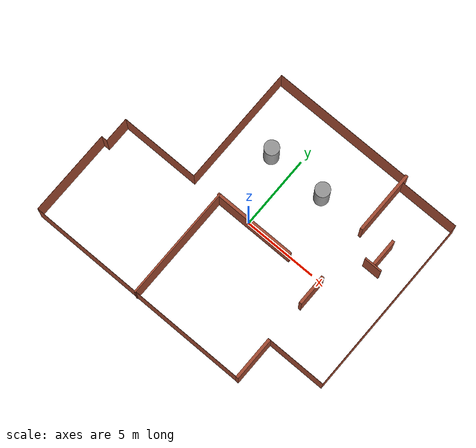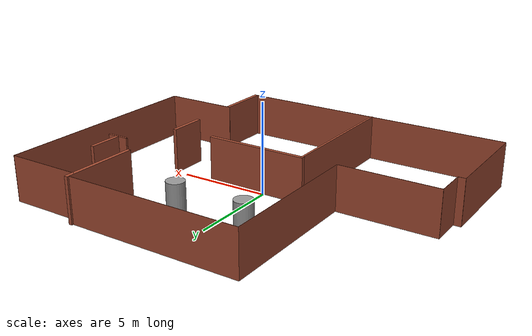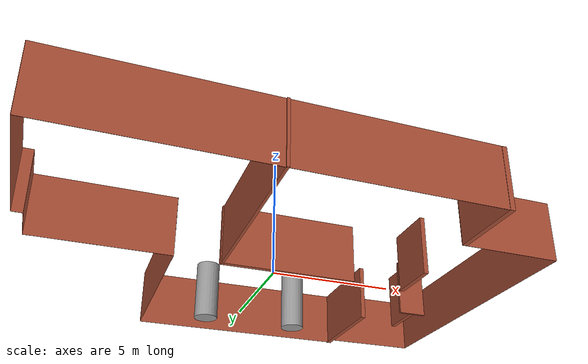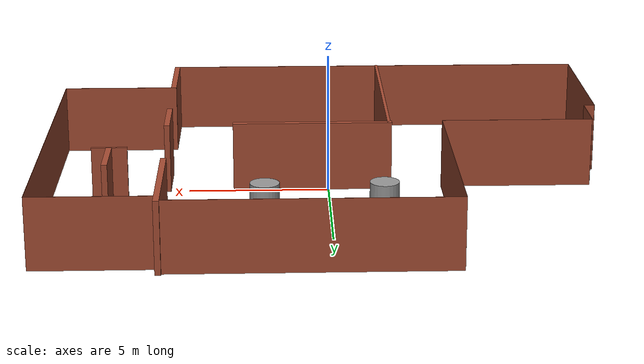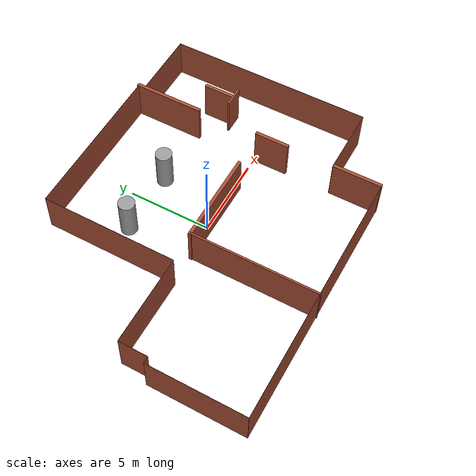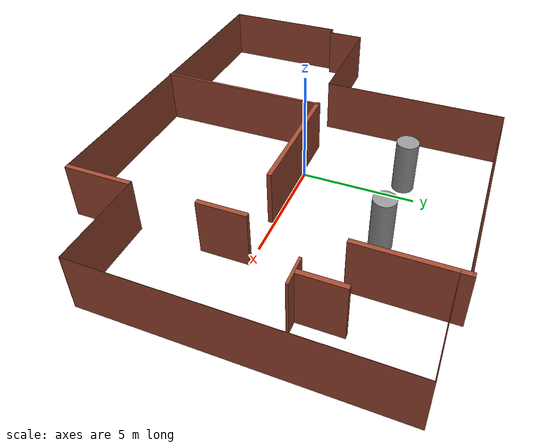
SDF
<?xml version='1.0'?>
<sdf version='1.6'>
  <model name='ANPL_Lab_Extended'>
    <link name='Wall_165'>
      <pose frame=''>-9.925 -4.975 0 0 -0 1.5708</pose>
      <self_collide>0</self_collide>
      <kinematic>0</kinematic>
      <visual name='Wall_165_Visual'>
        <pose frame=''>0 0 1.25 0 -0 0</pose>
        <geometry>
          <box>
            <size>5.86 0.01 2.5</size>
          </box>
        </geometry>
        <material>
          <script>
            <uri>file://media/materials/scripts/gazebo.material</uri>
            <name>Gazebo/Bricks</name>
          </script>
          <ambient>0.435294 0.796078 0.67451 1</ambient>
          <diffuse>1 1 1 1</diffuse>
          <specular>0.2 0.2 0.2 1</specular>
          <emissive>0 0 0 1</emissive>
        </material>
        <cast_shadows>1</cast_shadows>
        <transparency>0</transparency>
      </visual>
      <collision name='Wall_165_Collision'>
        <laser_retro>0</laser_retro>
        <max_contacts>10</max_contacts>
        <pose frame=''>0 0 1.25 0 -0 0</pose>
        <geometry>
          <box>
            <size>5.86 0.01 2.5</size>
          </box>
        </geometry>
        <surface>
          <friction>
            <ode>
              <mu>1</mu>
              <mu2>1</mu2>
              <fdir1>0 0 0</fdir1>
              <slip1>0</slip1>
              <slip2>0</slip2>
            </ode>
            <torsional>
              <coefficient>1</coefficient>
              <patch_radius>0</patch_radius>
              <surface_radius>0</surface_radius>
              <use_patch_radius>1</use_patch_radius>
              <ode>
                <slip>0</slip>
              </ode>
            </torsional>
          </friction>
          <bounce>
            <restitution_coefficient>0</restitution_coefficient>
            <threshold>1e+06</threshold>
          </bounce>
          <contact>
            <collide_without_contact>0</collide_without_contact>
            <collide_without_contact_bitmask>1</collide_without_contact_bitmask>
            <collide_bitmask>1</collide_bitmask>
            <ode>
              <soft_cfm>0</soft_cfm>
              <soft_erp>0.2</soft_erp>
              <kp>1e+13</kp>
              <kd>1</kd>
              <max_vel>0.01</max_vel>
              <min_depth>0</min_depth>
            </ode>
            <bullet>
              <split_impulse>1</split_impulse>
              <split_impulse_penetration_threshold>-0.01</split_impulse_penetration_threshold>
              <soft_cfm>0</soft_cfm>
              <soft_erp>0.2</soft_erp>
              <kp>1e+13</kp>
              <kd>1</kd>
            </bullet>
          </contact>
        </surface>
      </collision>
    </link>
    <link name='Wall_167'>
      <pose frame=''>-9.725 -2.05 0 0 -0 0</pose>
      <self_collide>0</self_collide>
      <kinematic>0</kinematic>
      <visual name='Wall_167_Visual'>
        <pose frame=''>0 0 1.25 0 -0 0</pose>
        <geometry>
          <box>
            <size>0.41 0.01 2.5</size>
          </box>
        </geometry>
        <material>
          <script>
            <uri>file://media/materials/scripts/gazebo.material</uri>
            <name>Gazebo/Bricks</name>
          </script>
          <ambient>0.435294 0.796078 0.67451 1</ambient>
          <diffuse>1 1 1 1</diffuse>
          <specular>0.2 0.2 0.2 1</specular>
          <emissive>0 0 0 1</emissive>
        </material>
        <cast_shadows>1</cast_shadows>
        <transparency>0</transparency>
      </visual>
      <collision name='Wall_167_Collision'>
        <laser_retro>0</laser_retro>
        <max_contacts>10</max_contacts>
        <pose frame=''>0 0 1.25 0 -0 0</pose>
        <geometry>
          <box>
            <size>0.41 0.01 2.5</size>
          </box>
        </geometry>
        <surface>
          <friction>
            <ode>
              <mu>1</mu>
              <mu2>1</mu2>
              <fdir1>0 0 0</fdir1>
              <slip1>0</slip1>
              <slip2>0</slip2>
            </ode>
            <torsional>
              <coefficient>1</coefficient>
              <patch_radius>0</patch_radius>
              <surface_radius>0</surface_radius>
              <use_patch_radius>1</use_patch_radius>
              <ode>
                <slip>0</slip>
              </ode>
            </torsional>
          </friction>
          <bounce>
            <restitution_coefficient>0</restitution_coefficient>
            <threshold>1e+06</threshold>
          </bounce>
          <contact>
            <collide_without_contact>0</collide_without_contact>
            <collide_without_contact_bitmask>1</collide_without_contact_bitmask>
            <collide_bitmask>1</collide_bitmask>
            <ode>
              <soft_cfm>0</soft_cfm>
              <soft_erp>0.2</soft_erp>
              <kp>1e+13</kp>
              <kd>1</kd>
              <max_vel>0.01</max_vel>
              <min_depth>0</min_depth>
            </ode>
            <bullet>
              <split_impulse>1</split_impulse>
              <split_impulse_penetration_threshold>-0.01</split_impulse_penetration_threshold>
              <soft_cfm>0</soft_cfm>
              <soft_erp>0.2</soft_erp>
              <kp>1e+13</kp>
              <kd>1</kd>
            </bullet>
          </contact>
        </surface>
      </collision>
    </link>
    <link name='Wall_169'>
      <pose frame=''>-9.525 -1.175 0 0 -0 1.5708</pose>
      <self_collide>0</self_collide>
      <kinematic>0</kinematic>
      <visual name='Wall_169_Visual'>
        <pose frame=''>0 0 1.25 0 -0 0</pose>
        <geometry>
          <box>
            <size>1.76 0.01 2.5</size>
          </box>
        </geometry>
        <material>
          <script>
            <uri>file://media/materials/scripts/gazebo.material</uri>
            <name>Gazebo/Bricks</name>
          </script>
          <ambient>0.435294 0.796078 0.67451 1</ambient>
          <diffuse>1 1 1 1</diffuse>
          <specular>0.2 0.2 0.2 1</specular>
          <emissive>0 0 0 1</emissive>
        </material>
        <cast_shadows>1</cast_shadows>
        <transparency>0</transparency>
      </visual>
      <collision name='Wall_169_Collision'>
        <laser_retro>0</laser_retro>
        <max_contacts>10</max_contacts>
        <pose frame=''>0 0 1.25 0 -0 0</pose>
        <geometry>
          <box>
            <size>1.76 0.01 2.5</size>
          </box>
        </geometry>
        <surface>
          <friction>
            <ode>
              <mu>1</mu>
              <mu2>1</mu2>
              <fdir1>0 0 0</fdir1>
              <slip1>0</slip1>
              <slip2>0</slip2>
            </ode>
            <torsional>
              <coefficient>1</coefficient>
              <patch_radius>0</patch_radius>
              <surface_radius>0</surface_radius>
              <use_patch_radius>1</use_patch_radius>
              <ode>
                <slip>0</slip>
              </ode>
            </torsional>
          </friction>
          <bounce>
            <restitution_coefficient>0</restitution_coefficient>
            <threshold>1e+06</threshold>
          </bounce>
          <contact>
            <collide_without_contact>0</collide_without_contact>
            <collide_without_contact_bitmask>1</collide_without_contact_bitmask>
            <collide_bitmask>1</collide_bitmask>
            <ode>
              <soft_cfm>0</soft_cfm>
              <soft_erp>0.2</soft_erp>
              <kp>1e+13</kp>
              <kd>1</kd>
              <max_vel>0.01</max_vel>
              <min_depth>0</min_depth>
            </ode>
            <bullet>
              <split_impulse>1</split_impulse>
              <split_impulse_penetration_threshold>-0.01</split_impulse_penetration_threshold>
              <soft_cfm>0</soft_cfm>
              <soft_erp>0.2</soft_erp>
              <kp>1e+13</kp>
              <kd>1</kd>
            </bullet>
          </contact>
        </surface>
      </collision>
    </link>
    <link name='Wall_171'>
      <pose frame=''>-6.8125 -0.3 0 0 -0 0</pose>
      <self_collide>0</self_collide>
      <kinematic>0</kinematic>
      <visual name='Wall_171_Visual'>
        <pose frame=''>0 0 1.25 0 -0 0</pose>
        <geometry>
          <box>
            <size>5.435 0.01 2.5</size>
          </box>
        </geometry>
        <material>
          <script>
            <uri>file://media/materials/scripts/gazebo.material</uri>
            <name>Gazebo/Bricks</name>
          </script>
          <ambient>0.435294 0.796078 0.67451 1</ambient>
          <diffuse>1 1 1 1</diffuse>
          <specular>0.2 0.2 0.2 1</specular>
          <emissive>0 0 0 1</emissive>
        </material>
        <cast_shadows>1</cast_shadows>
        <transparency>0</transparency>
      </visual>
      <collision name='Wall_171_Collision'>
        <laser_retro>0</laser_retro>
        <max_contacts>10</max_contacts>
        <pose frame=''>0 0 1.25 0 -0 0</pose>
        <geometry>
          <box>
            <size>5.435 0.01 2.5</size>
          </box>
        </geometry>
        <surface>
          <friction>
            <ode>
              <mu>1</mu>
              <mu2>1</mu2>
              <fdir1>0 0 0</fdir1>
              <slip1>0</slip1>
              <slip2>0</slip2>
            </ode>
            <torsional>
              <coefficient>1</coefficient>
              <patch_radius>0</patch_radius>
              <surface_radius>0</surface_radius>
              <use_patch_radius>1</use_patch_radius>
              <ode>
                <slip>0</slip>
              </ode>
            </torsional>
          </friction>
          <bounce>
            <restitution_coefficient>0</restitution_coefficient>
            <threshold>1e+06</threshold>
          </bounce>
          <contact>
            <collide_without_contact>0</collide_without_contact>
            <collide_without_contact_bitmask>1</collide_without_contact_bitmask>
            <collide_bitmask>1</collide_bitmask>
            <ode>
              <soft_cfm>0</soft_cfm>
              <soft_erp>0.2</soft_erp>
              <kp>1e+13</kp>
              <kd>1</kd>
              <max_vel>0.01</max_vel>
              <min_depth>0</min_depth>
            </ode>
            <bullet>
              <split_impulse>1</split_impulse>
              <split_impulse_penetration_threshold>-0.01</split_impulse_penetration_threshold>
              <soft_cfm>0</soft_cfm>
              <soft_erp>0.2</soft_erp>
              <kp>1e+13</kp>
              <kd>1</kd>
            </bullet>
          </contact>
        </surface>
      </collision>
    </link>
    <link name='Wall_173'>
      <pose frame=''>-4.1 3.8 0 0 -0 1.5708</pose>
      <self_collide>0</self_collide>
      <kinematic>0</kinematic>
      <visual name='Wall_173_Visual'>
        <pose frame=''>0 0 1.25 0 -0 0</pose>
        <geometry>
          <box>
            <size>8.21 0.01 2.5</size>
          </box>
        </geometry>
        <material>
          <script>
            <uri>file://media/materials/scripts/gazebo.material</uri>
            <name>Gazebo/Bricks</name>
          </script>
          <ambient>0.435294 0.796078 0.67451 1</ambient>
          <diffuse>1 1 1 1</diffuse>
          <specular>0.2 0.2 0.2 1</specular>
          <emissive>0 0 0 1</emissive>
        </material>
        <cast_shadows>1</cast_shadows>
        <transparency>0</transparency>
      </visual>
      <collision name='Wall_173_Collision'>
        <laser_retro>0</laser_retro>
        <max_contacts>10</max_contacts>
        <pose frame=''>0 0 1.25 0 -0 0</pose>
        <geometry>
          <box>
            <size>8.21 0.01 2.5</size>
          </box>
        </geometry>
        <surface>
          <friction>
            <ode>
              <mu>1</mu>
              <mu2>1</mu2>
              <fdir1>0 0 0</fdir1>
              <slip1>0</slip1>
              <slip2>0</slip2>
            </ode>
            <torsional>
              <coefficient>1</coefficient>
              <patch_radius>0</patch_radius>
              <surface_radius>0</surface_radius>
              <use_patch_radius>1</use_patch_radius>
              <ode>
                <slip>0</slip>
              </ode>
            </torsional>
          </friction>
          <bounce>
            <restitution_coefficient>0</restitution_coefficient>
            <threshold>1e+06</threshold>
          </bounce>
          <contact>
            <collide_without_contact>0</collide_without_contact>
            <collide_without_contact_bitmask>1</collide_without_contact_bitmask>
            <collide_bitmask>1</collide_bitmask>
            <ode>
              <soft_cfm>0</soft_cfm>
              <soft_erp>0.2</soft_erp>
              <kp>1e+13</kp>
              <kd>1</kd>
              <max_vel>0.01</max_vel>
              <min_depth>0</min_depth>
            </ode>
            <bullet>
              <split_impulse>1</split_impulse>
              <split_impulse_penetration_threshold>-0.01</split_impulse_penetration_threshold>
              <soft_cfm>0</soft_cfm>
              <soft_erp>0.2</soft_erp>
              <kp>1e+13</kp>
              <kd>1</kd>
            </bullet>
          </contact>
        </surface>
      </collision>
    </link>
    <link name='Wall_175'>
      <pose frame=''>0.7875 7.9 0 0 -0 0</pose>
      <self_collide>0</self_collide>
      <kinematic>0</kinematic>
      <visual name='Wall_175_Visual'>
        <pose frame=''>0 0 1.25 0 -0 0</pose>
        <geometry>
          <box>
            <size>9.785 0.01 2.5</size>
          </box>
        </geometry>
        <material>
          <script>
            <uri>file://media/materials/scripts/gazebo.material</uri>
            <name>Gazebo/Bricks</name>
          </script>
          <ambient>0.435294 0.796078 0.67451 1</ambient>
          <diffuse>1 1 1 1</diffuse>
          <specular>0.2 0.2 0.2 1</specular>
          <emissive>0 0 0 1</emissive>
        </material>
        <cast_shadows>1</cast_shadows>
        <transparency>0</transparency>
      </visual>
      <collision name='Wall_175_Collision'>
        <laser_retro>0</laser_retro>
        <max_contacts>10</max_contacts>
        <pose frame=''>0 0 1.25 0 -0 0</pose>
        <geometry>
          <box>
            <size>9.785 0.01 2.5</size>
          </box>
        </geometry>
        <surface>
          <friction>
            <ode>
              <mu>1</mu>
              <mu2>1</mu2>
              <fdir1>0 0 0</fdir1>
              <slip1>0</slip1>
              <slip2>0</slip2>
            </ode>
            <torsional>
              <coefficient>1</coefficient>
              <patch_radius>0</patch_radius>
              <surface_radius>0</surface_radius>
              <use_patch_radius>1</use_patch_radius>
              <ode>
                <slip>0</slip>
              </ode>
            </torsional>
          </friction>
          <bounce>
            <restitution_coefficient>0</restitution_coefficient>
            <threshold>1e+06</threshold>
          </bounce>
          <contact>
            <collide_without_contact>0</collide_without_contact>
            <collide_without_contact_bitmask>1</collide_without_contact_bitmask>
            <collide_bitmask>1</collide_bitmask>
            <ode>
              <soft_cfm>0</soft_cfm>
              <soft_erp>0.2</soft_erp>
              <kp>1e+13</kp>
              <kd>1</kd>
              <max_vel>0.01</max_vel>
              <min_depth>0</min_depth>
            </ode>
            <bullet>
              <split_impulse>1</split_impulse>
              <split_impulse_penetration_threshold>-0.01</split_impulse_penetration_threshold>
              <soft_cfm>0</soft_cfm>
              <soft_erp>0.2</soft_erp>
              <kp>1e+13</kp>
              <kd>1</kd>
            </bullet>
          </contact>
        </surface>
      </collision>
    </link>
    <link name='Wall_177'>
      <pose frame=''>5.675 5.85 0 0 0 -1.5708</pose>
      <self_collide>0</self_collide>
      <kinematic>0</kinematic>
      <visual name='Wall_177_Visual'>
        <pose frame=''>0 0 1.25 0 -0 0</pose>
        <geometry>
          <box>
            <size>4.3 0.2 2.5</size>
          </box>
        </geometry>
        <material>
          <script>
            <uri>file://media/materials/scripts/gazebo.material</uri>
            <name>Gazebo/Bricks</name>
          </script>
          <ambient>0.435294 0.796078 0.67451 1</ambient>
          <diffuse>1 1 1 1</diffuse>
          <specular>0.2 0.2 0.2 1</specular>
          <emissive>0 0 0 1</emissive>
        </material>
        <cast_shadows>1</cast_shadows>
        <transparency>0</transparency>
      </visual>
      <collision name='Wall_177_Collision'>
        <laser_retro>0</laser_retro>
        <max_contacts>10</max_contacts>
        <pose frame=''>0 0 1.25 0 -0 0</pose>
        <geometry>
          <box>
            <size>4.3 0.2 2.5</size>
          </box>
        </geometry>
        <surface>
          <friction>
            <ode>
              <mu>1</mu>
              <mu2>1</mu2>
              <fdir1>0 0 0</fdir1>
              <slip1>0</slip1>
              <slip2>0</slip2>
            </ode>
            <torsional>
              <coefficient>1</coefficient>
              <patch_radius>0</patch_radius>
              <surface_radius>0</surface_radius>
              <use_patch_radius>1</use_patch_radius>
              <ode>
                <slip>0</slip>
              </ode>
            </torsional>
          </friction>
          <bounce>
            <restitution_coefficient>0</restitution_coefficient>
            <threshold>1e+06</threshold>
          </bounce>
          <contact>
            <collide_without_contact>0</collide_without_contact>
            <collide_without_contact_bitmask>1</collide_without_contact_bitmask>
            <collide_bitmask>1</collide_bitmask>
            <ode>
              <soft_cfm>0</soft_cfm>
              <soft_erp>0.2</soft_erp>
              <kp>1e+13</kp>
              <kd>1</kd>
              <max_vel>0.01</max_vel>
              <min_depth>0</min_depth>
            </ode>
            <bullet>
              <split_impulse>1</split_impulse>
              <split_impulse_penetration_threshold>-0.01</split_impulse_penetration_threshold>
              <soft_cfm>0</soft_cfm>
              <soft_erp>0.2</soft_erp>
              <kp>1e+13</kp>
              <kd>1</kd>
            </bullet>
          </contact>
        </surface>
      </collision>
    </link>
    <link name='Wall_179'>
      <pose frame=''>7.775 7.5 0 0 -0 0</pose>
      <self_collide>0</self_collide>
      <kinematic>0</kinematic>
      <visual name='Wall_179_Visual'>
        <pose frame=''>0 0 1.25 0 -0 0</pose>
        <geometry>
          <box>
            <size>4.21 0.01 2.5</size>
          </box>
        </geometry>
        <material>
          <script>
            <uri>file://media/materials/scripts/gazebo.material</uri>
            <name>Gazebo/Bricks</name>
          </script>
          <ambient>0.435294 0.796078 0.67451 1</ambient>
          <diffuse>1 1 1 1</diffuse>
          <specular>0.2 0.2 0.2 1</specular>
          <emissive>0 0 0 1</emissive>
        </material>
        <cast_shadows>1</cast_shadows>
        <transparency>0</transparency>
      </visual>
      <collision name='Wall_179_Collision'>
        <laser_retro>0</laser_retro>
        <max_contacts>10</max_contacts>
        <pose frame=''>0 0 1.25 0 -0 0</pose>
        <geometry>
          <box>
            <size>4.21 0.01 2.5</size>
          </box>
        </geometry>
        <surface>
          <friction>
            <ode>
              <mu>1</mu>
              <mu2>1</mu2>
              <fdir1>0 0 0</fdir1>
              <slip1>0</slip1>
              <slip2>0</slip2>
            </ode>
            <torsional>
              <coefficient>1</coefficient>
              <patch_radius>0</patch_radius>
              <surface_radius>0</surface_radius>
              <use_patch_radius>1</use_patch_radius>
              <ode>
                <slip>0</slip>
              </ode>
            </torsional>
          </friction>
          <bounce>
            <restitution_coefficient>0</restitution_coefficient>
            <threshold>1e+06</threshold>
          </bounce>
          <contact>
            <collide_without_contact>0</collide_without_contact>
            <collide_without_contact_bitmask>1</collide_without_contact_bitmask>
            <collide_bitmask>1</collide_bitmask>
            <ode>
              <soft_cfm>0</soft_cfm>
              <soft_erp>0.2</soft_erp>
              <kp>1e+13</kp>
              <kd>1</kd>
              <max_vel>0.01</max_vel>
              <min_depth>0</min_depth>
            </ode>
            <bullet>
              <split_impulse>1</split_impulse>
              <split_impulse_penetration_threshold>-0.01</split_impulse_penetration_threshold>
              <soft_cfm>0</soft_cfm>
              <soft_erp>0.2</soft_erp>
              <kp>1e+13</kp>
              <kd>1</kd>
            </bullet>
          </contact>
        </surface>
      </collision>
    </link>
    <link name='Wall_181'>
      <pose frame=''>9.875 1.285 0 0 0 -1.5708</pose>
      <self_collide>0</self_collide>
      <kinematic>0</kinematic>
      <visual name='Wall_181_Visual'>
        <pose frame=''>0 0 1.25 0 -0 0</pose>
        <geometry>
          <box>
            <size>12.44 0.01 2.5</size>
          </box>
        </geometry>
        <material>
          <script>
            <uri>file://media/materials/scripts/gazebo.material</uri>
            <name>Gazebo/Bricks</name>
          </script>
          <ambient>0.435294 0.796078 0.67451 1</ambient>
          <diffuse>1 1 1 1</diffuse>
          <specular>0.2 0.2 0.2 1</specular>
          <emissive>0 0 0 1</emissive>
        </material>
        <cast_shadows>1</cast_shadows>
        <transparency>0</transparency>
      </visual>
      <collision name='Wall_181_Collision'>
        <laser_retro>0</laser_retro>
        <max_contacts>10</max_contacts>
        <pose frame=''>0 0 1.25 0 -0 0</pose>
        <geometry>
          <box>
            <size>12.44 0.01 2.5</size>
          </box>
        </geometry>
        <surface>
          <friction>
            <ode>
              <mu>1</mu>
              <mu2>1</mu2>
              <fdir1>0 0 0</fdir1>
              <slip1>0</slip1>
              <slip2>0</slip2>
            </ode>
            <torsional>
              <coefficient>1</coefficient>
              <patch_radius>0</patch_radius>
              <surface_radius>0</surface_radius>
              <use_patch_radius>1</use_patch_radius>
              <ode>
                <slip>0</slip>
              </ode>
            </torsional>
          </friction>
          <bounce>
            <restitution_coefficient>0</restitution_coefficient>
            <threshold>1e+06</threshold>
          </bounce>
          <contact>
            <collide_without_contact>0</collide_without_contact>
            <collide_without_contact_bitmask>1</collide_without_contact_bitmask>
            <collide_bitmask>1</collide_bitmask>
            <ode>
              <soft_cfm>0</soft_cfm>
              <soft_erp>0.2</soft_erp>
              <kp>1e+13</kp>
              <kd>1</kd>
              <max_vel>0.01</max_vel>
              <min_depth>0</min_depth>
            </ode>
            <bullet>
              <split_impulse>1</split_impulse>
              <split_impulse_penetration_threshold>-0.01</split_impulse_penetration_threshold>
              <soft_cfm>0</soft_cfm>
              <soft_erp>0.2</soft_erp>
              <kp>1e+13</kp>
              <kd>1</kd>
            </bullet>
          </contact>
        </surface>
      </collision>
    </link>
    <link name='Wall_183'>
      <pose frame=''>7.6044 3.46126 0 0 -0 1.5708</pose>
      <inertial>
        <mass>1.43571</mass>
        <pose frame=''>0 0 0 0 -0 0</pose>
        <inertia>
          <ixx>1.43571</ixx>
          <ixy>0</ixy>
          <ixz>0</ixz>
          <iyy>2.19753</iyy>
          <iyz>0</iyz>
          <izz>2.19753</izz>
        </inertia>
      </inertial>
      <self_collide>0</self_collide>
      <kinematic>0</kinematic>
      <visual name='Wall_183_Visual'>
        <pose frame=''>0 0 1.25 0 -0 0</pose>
        <geometry>
          <box>
            <size>1.86641 0.2 2.5</size>
          </box>
        </geometry>
        <material>
          <script>
            <uri>file://media/materials/scripts/gazebo.material</uri>
            <name>Gazebo/Bricks</name>
          </script>
          <ambient>0.435 0.796 0.675 1</ambient>
          <diffuse>1 1 1 1</diffuse>
          <specular>0.2 0.2 0.2 1</specular>
          <emissive>0 0 0 1</emissive>
          <shader type='vertex'>
            <normal_map>__default__</normal_map>
          </shader>
        </material>
        <cast_shadows>1</cast_shadows>
        <transparency>0</transparency>
      </visual>
      <collision name='Wall_183_Collision'>
        <laser_retro>0</laser_retro>
        <max_contacts>10</max_contacts>
        <pose frame=''>0 0 1.25 0 -0 0</pose>
        <geometry>
          <box>
            <size>1.86641 0.2 2.5</size>
          </box>
        </geometry>
        <surface>
          <friction>
            <ode>
              <mu>1</mu>
              <mu2>1</mu2>
              <fdir1>0 0 0</fdir1>
              <slip1>0</slip1>
              <slip2>0</slip2>
            </ode>
            <torsional>
              <coefficient>1</coefficient>
              <patch_radius>0</patch_radius>
              <surface_radius>0</surface_radius>
              <use_patch_radius>1</use_patch_radius>
              <ode>
                <slip>0</slip>
              </ode>
            </torsional>
          </friction>
          <bounce>
            <restitution_coefficient>0</restitution_coefficient>
            <threshold>1e+06</threshold>
          </bounce>
          <contact>
            <collide_without_contact>0</collide_without_contact>
            <collide_without_contact_bitmask>1</collide_without_contact_bitmask>
            <collide_bitmask>1</collide_bitmask>
            <ode>
              <soft_cfm>0</soft_cfm>
              <soft_erp>0.2</soft_erp>
              <kp>1e+13</kp>
              <kd>1</kd>
              <max_vel>0.01</max_vel>
              <min_depth>0</min_depth>
            </ode>
            <bullet>
              <split_impulse>1</split_impulse>
              <split_impulse_penetration_threshold>-0.01</split_impulse_penetration_threshold>
              <soft_cfm>0</soft_cfm>
              <soft_erp>0.2</soft_erp>
              <kp>1e+13</kp>
              <kd>1</kd>
            </bullet>
          </contact>
        </surface>
      </collision>
    </link>
    <link name='Wall_185'>
      <pose frame=''>5.76868 -1.05 0 0 0 -1.5708</pose>
      <inertial>
        <mass>1</mass>
        <pose frame=''>0 0 0 0 -0 0</pose>
        <inertia>
          <ixx>1</ixx>
          <ixy>0</ixy>
          <ixz>0</ixz>
          <iyy>1</iyy>
          <iyz>0</iyz>
          <izz>1</izz>
        </inertia>
      </inertial>
      <self_collide>0</self_collide>
      <kinematic>0</kinematic>
      <visual name='Wall_185_Visual'>
        <pose frame=''>0 0 1.25 0 -0 0</pose>
        <geometry>
          <box>
            <size>2.1 0.2 2.5</size>
          </box>
        </geometry>
        <material>
          <script>
            <uri>file://media/materials/scripts/gazebo.material</uri>
            <name>Gazebo/Bricks</name>
          </script>
          <ambient>0.435 0.796 0.675 1</ambient>
          <diffuse>1 1 1 1</diffuse>
          <specular>0.2 0.2 0.2 1</specular>
          <emissive>0 0 0 1</emissive>
          <shader type='vertex'>
            <normal_map>__default__</normal_map>
          </shader>
        </material>
        <cast_shadows>1</cast_shadows>
        <transparency>0</transparency>
      </visual>
      <collision name='Wall_185_Collision'>
        <laser_retro>0</laser_retro>
        <max_contacts>10</max_contacts>
        <pose frame=''>0 0 1.25 0 -0 0</pose>
        <geometry>
          <box>
            <size>2.1 0.2 2.5</size>
          </box>
        </geometry>
        <surface>
          <friction>
            <ode>
              <mu>1</mu>
              <mu2>1</mu2>
              <fdir1>0 0 0</fdir1>
              <slip1>0</slip1>
              <slip2>0</slip2>
            </ode>
            <torsional>
              <coefficient>1</coefficient>
              <patch_radius>0</patch_radius>
              <surface_radius>0</surface_radius>
              <use_patch_radius>1</use_patch_radius>
              <ode>
                <slip>0</slip>
              </ode>
            </torsional>
          </friction>
          <bounce>
            <restitution_coefficient>0</restitution_coefficient>
            <threshold>1e+06</threshold>
          </bounce>
          <contact>
            <collide_without_contact>0</collide_without_contact>
            <collide_without_contact_bitmask>1</collide_without_contact_bitmask>
            <collide_bitmask>1</collide_bitmask>
            <ode>
              <soft_cfm>0</soft_cfm>
              <soft_erp>0.2</soft_erp>
              <kp>1e+13</kp>
              <kd>1</kd>
              <max_vel>0.01</max_vel>
              <min_depth>0</min_depth>
            </ode>
            <bullet>
              <split_impulse>1</split_impulse>
              <split_impulse_penetration_threshold>-0.01</split_impulse_penetration_threshold>
              <soft_cfm>0</soft_cfm>
              <soft_erp>0.2</soft_erp>
              <kp>1e+13</kp>
              <kd>1</kd>
            </bullet>
          </contact>
        </surface>
      </collision>
    </link>
    <link name='Wall_187'>
      <pose frame=''>7.59405 2.49 0 0 -0 0</pose>
      <self_collide>0</self_collide>
      <kinematic>0</kinematic>
      <inertial>
        <inertia>
          <ixx>nan</ixx>
          <ixy>0</ixy>
          <ixz>0</ixz>
          <iyy>nan</iyy>
          <iyz>0</iyz>
          <izz>nan</izz>
        </inertia>
        <mass>0</mass>
        <pose frame=''>0 0 0 0 -0 0</pose>
      </inertial>
      <visual name='Wall_187_Visual'>
        <pose frame=''>0 0 1.25 0 -0 0</pose>
        <geometry>
          <box>
            <size>1.23163 0.11 2.5</size>
          </box>
        </geometry>
        <material>
          <script>
            <uri>file://media/materials/scripts/gazebo.material</uri>
            <name>Gazebo/Bricks</name>
          </script>
          <ambient>0.435294 0.796078 0.67451 1</ambient>
          <diffuse>1 1 1 1</diffuse>
          <specular>0.2 0.2 0.2 1</specular>
          <emissive>0 0 0 1</emissive>
        </material>
        <cast_shadows>1</cast_shadows>
        <transparency>0</transparency>
      </visual>
      <collision name='Wall_187_Collision'>
        <laser_retro>0</laser_retro>
        <max_contacts>10</max_contacts>
        <pose frame=''>0 0 1.25 0 -0 0</pose>
        <geometry>
          <box>
            <size>1.23163 0.11 2.5</size>
          </box>
        </geometry>
        <surface>
          <friction>
            <ode>
              <mu>1</mu>
              <mu2>1</mu2>
              <fdir1>0 0 0</fdir1>
              <slip1>0</slip1>
              <slip2>0</slip2>
            </ode>
            <torsional>
              <coefficient>1</coefficient>
              <patch_radius>0</patch_radius>
              <surface_radius>0</surface_radius>
              <use_patch_radius>1</use_patch_radius>
              <ode>
                <slip>0</slip>
              </ode>
            </torsional>
          </friction>
          <bounce>
            <restitution_coefficient>0</restitution_coefficient>
            <threshold>1e+06</threshold>
          </bounce>
          <contact>
            <collide_without_contact>0</collide_without_contact>
            <collide_without_contact_bitmask>1</collide_without_contact_bitmask>
            <collide_bitmask>1</collide_bitmask>
            <ode>
              <soft_cfm>0</soft_cfm>
              <soft_erp>0.2</soft_erp>
              <kp>1e+13</kp>
              <kd>1</kd>
              <max_vel>0.01</max_vel>
              <min_depth>0</min_depth>
            </ode>
            <bullet>
              <split_impulse>1</split_impulse>
              <split_impulse_penetration_threshold>-0.01</split_impulse_penetration_threshold>
              <soft_cfm>0</soft_cfm>
              <soft_erp>0.2</soft_erp>
              <kp>1e+13</kp>
              <kd>1</kd>
            </bullet>
          </contact>
        </surface>
      </collision>
    </link>
    <link name='Wall_201'>
      <pose frame=''>7.775 -4.93 0 0 -0 3.14159</pose>
      <self_collide>0</self_collide>
      <kinematic>0</kinematic>
      <visual name='Wall_201_Visual'>
        <pose frame=''>0 0 1.25 0 -0 0</pose>
        <geometry>
          <box>
            <size>4.21 0.01 2.5</size>
          </box>
        </geometry>
        <material>
          <script>
            <uri>file://media/materials/scripts/gazebo.material</uri>
            <name>Gazebo/Bricks</name>
          </script>
          <ambient>0.435294 0.796078 0.67451 1</ambient>
          <diffuse>1 1 1 1</diffuse>
          <specular>0.2 0.2 0.2 1</specular>
          <emissive>0 0 0 1</emissive>
        </material>
        <cast_shadows>1</cast_shadows>
        <transparency>0</transparency>
      </visual>
      <collision name='Wall_201_Collision'>
        <laser_retro>0</laser_retro>
        <max_contacts>10</max_contacts>
        <pose frame=''>0 0 1.25 0 -0 0</pose>
        <geometry>
          <box>
            <size>4.21 0.01 2.5</size>
          </box>
        </geometry>
        <surface>
          <friction>
            <ode>
              <mu>1</mu>
              <mu2>1</mu2>
              <fdir1>0 0 0</fdir1>
              <slip1>0</slip1>
              <slip2>0</slip2>
            </ode>
            <torsional>
              <coefficient>1</coefficient>
              <patch_radius>0</patch_radius>
              <surface_radius>0</surface_radius>
              <use_patch_radius>1</use_patch_radius>
              <ode>
                <slip>0</slip>
              </ode>
            </torsional>
          </friction>
          <bounce>
            <restitution_coefficient>0</restitution_coefficient>
            <threshold>1e+06</threshold>
          </bounce>
          <contact>
            <collide_without_contact>0</collide_without_contact>
            <collide_without_contact_bitmask>1</collide_without_contact_bitmask>
            <collide_bitmask>1</collide_bitmask>
            <ode>
              <soft_cfm>0</soft_cfm>
              <soft_erp>0.2</soft_erp>
              <kp>1e+13</kp>
              <kd>1</kd>
              <max_vel>0.01</max_vel>
              <min_depth>0</min_depth>
            </ode>
            <bullet>
              <split_impulse>1</split_impulse>
              <split_impulse_penetration_threshold>-0.01</split_impulse_penetration_threshold>
              <soft_cfm>0</soft_cfm>
              <soft_erp>0.2</soft_erp>
              <kp>1e+13</kp>
              <kd>1</kd>
            </bullet>
          </contact>
        </surface>
      </collision>
    </link>
    <link name='Wall_203'>
      <pose frame=''>5.76868 -6.42951 0 0 0 -1.5708</pose>
      <inertial>
        <inertia>
          <ixx>1.79769e+308</ixx>
          <ixy>0</ixy>
          <ixz>0</ixz>
          <iyy>1.79769e+308</iyy>
          <iyz>0</iyz>
          <izz>1.79769e+308</izz>
        </inertia>
        <mass>0</mass>
        <pose frame=''>0 0 0 0 -0 0</pose>
      </inertial>
      <self_collide>0</self_collide>
      <kinematic>0</kinematic>
      <visual name='Wall_203_Visual'>
        <pose frame=''>0 0 1.25 0 -0 0</pose>
        <geometry>
          <box>
            <size>2.97075 0.2 2.5</size>
          </box>
        </geometry>
        <material>
          <script>
            <uri>file://media/materials/scripts/gazebo.material</uri>
            <name>Gazebo/Bricks</name>
          </script>
          <ambient>0.435 0.796 0.675 1</ambient>
          <diffuse>1 1 1 1</diffuse>
          <specular>0.2 0.2 0.2 1</specular>
          <emissive>0 0 0 1</emissive>
          <shader type='vertex'>
            <normal_map>__default__</normal_map>
          </shader>
        </material>
        <cast_shadows>1</cast_shadows>
        <transparency>0</transparency>
      </visual>
      <collision name='Wall_203_Collision'>
        <laser_retro>0</laser_retro>
        <max_contacts>10</max_contacts>
        <pose frame=''>0 0 1.25 0 -0 0</pose>
        <geometry>
          <box>
            <size>2.97075 0.2 2.5</size>
          </box>
        </geometry>
        <surface>
          <friction>
            <ode>
              <mu>1</mu>
              <mu2>1</mu2>
              <fdir1>0 0 0</fdir1>
              <slip1>0</slip1>
              <slip2>0</slip2>
            </ode>
            <torsional>
              <coefficient>1</coefficient>
              <patch_radius>0</patch_radius>
              <surface_radius>0</surface_radius>
              <use_patch_radius>1</use_patch_radius>
              <ode>
                <slip>0</slip>
              </ode>
            </torsional>
          </friction>
          <bounce>
            <restitution_coefficient>0</restitution_coefficient>
            <threshold>1e+06</threshold>
          </bounce>
          <contact>
            <collide_without_contact>0</collide_without_contact>
            <collide_without_contact_bitmask>1</collide_without_contact_bitmask>
            <collide_bitmask>1</collide_bitmask>
            <ode>
              <soft_cfm>0</soft_cfm>
              <soft_erp>0.2</soft_erp>
              <kp>1e+13</kp>
              <kd>1</kd>
              <max_vel>0.01</max_vel>
              <min_depth>0</min_depth>
            </ode>
            <bullet>
              <split_impulse>1</split_impulse>
              <split_impulse_penetration_threshold>-0.01</split_impulse_penetration_threshold>
              <soft_cfm>0</soft_cfm>
              <soft_erp>0.2</soft_erp>
              <kp>1e+13</kp>
              <kd>1</kd>
            </bullet>
          </contact>
        </surface>
      </collision>
    </link>
    <link name='Wall_205'>
      <pose frame=''>-2.125 -7.9 0 0 -0 3.14159</pose>
      <self_collide>0</self_collide>
      <kinematic>0</kinematic>
      <visual name='Wall_205_Visual'>
        <pose frame=''>0 0 1.25 0 -0 0</pose>
        <geometry>
          <box>
            <size>15.61 0.01 2.5</size>
          </box>
        </geometry>
        <material>
          <script>
            <uri>file://media/materials/scripts/gazebo.material</uri>
            <name>Gazebo/Bricks</name>
          </script>
          <ambient>0.435294 0.796078 0.67451 1</ambient>
          <diffuse>1 1 1 1</diffuse>
          <specular>0.2 0.2 0.2 1</specular>
          <emissive>0 0 0 1</emissive>
        </material>
        <cast_shadows>1</cast_shadows>
        <transparency>0</transparency>
      </visual>
      <collision name='Wall_205_Collision'>
        <laser_retro>0</laser_retro>
        <max_contacts>10</max_contacts>
        <pose frame=''>0 0 1.25 0 -0 0</pose>
        <geometry>
          <box>
            <size>15.61 0.01 2.5</size>
          </box>
        </geometry>
        <surface>
          <friction>
            <ode>
              <mu>1</mu>
              <mu2>1</mu2>
              <fdir1>0 0 0</fdir1>
              <slip1>0</slip1>
              <slip2>0</slip2>
            </ode>
            <torsional>
              <coefficient>1</coefficient>
              <patch_radius>0</patch_radius>
              <surface_radius>0</surface_radius>
              <use_patch_radius>1</use_patch_radius>
              <ode>
                <slip>0</slip>
              </ode>
            </torsional>
          </friction>
          <bounce>
            <restitution_coefficient>0</restitution_coefficient>
            <threshold>1e+06</threshold>
          </bounce>
          <contact>
            <collide_without_contact>0</collide_without_contact>
            <collide_without_contact_bitmask>1</collide_without_contact_bitmask>
            <collide_bitmask>1</collide_bitmask>
            <ode>
              <soft_cfm>0</soft_cfm>
              <soft_erp>0.2</soft_erp>
              <kp>1e+13</kp>
              <kd>1</kd>
              <max_vel>0.01</max_vel>
              <min_depth>0</min_depth>
            </ode>
            <bullet>
              <split_impulse>1</split_impulse>
              <split_impulse_penetration_threshold>-0.01</split_impulse_penetration_threshold>
              <soft_cfm>0</soft_cfm>
              <soft_erp>0.2</soft_erp>
              <kp>1e+13</kp>
              <kd>1</kd>
            </bullet>
          </contact>
        </surface>
      </collision>
    </link>
    <link name='Wall_207'>
      <pose frame=''>-2.175 -4.05 0 0 -0 1.5708</pose>
      <self_collide>0</self_collide>
      <kinematic>0</kinematic>
      <visual name='Wall_207_Visual'>
        <pose frame=''>0 0 1.25 0 -0 0</pose>
        <geometry>
          <box>
            <size>7.81 0.11 2.5</size>
          </box>
        </geometry>
        <material>
          <script>
            <uri>file://media/materials/scripts/gazebo.material</uri>
            <name>Gazebo/Bricks</name>
          </script>
          <ambient>0.435294 0.796078 0.67451 1</ambient>
          <diffuse>1 1 1 1</diffuse>
          <specular>0.2 0.2 0.2 1</specular>
          <emissive>0 0 0 1</emissive>
        </material>
        <cast_shadows>1</cast_shadows>
        <transparency>0</transparency>
      </visual>
      <collision name='Wall_207_Collision'>
        <laser_retro>0</laser_retro>
        <max_contacts>10</max_contacts>
        <pose frame=''>0 0 1.25 0 -0 0</pose>
        <geometry>
          <box>
            <size>7.81 0.11 2.5</size>
          </box>
        </geometry>
        <surface>
          <friction>
            <ode>
              <mu>1</mu>
              <mu2>1</mu2>
              <fdir1>0 0 0</fdir1>
              <slip1>0</slip1>
              <slip2>0</slip2>
            </ode>
            <torsional>
              <coefficient>1</coefficient>
              <patch_radius>0</patch_radius>
              <surface_radius>0</surface_radius>
              <use_patch_radius>1</use_patch_radius>
              <ode>
                <slip>0</slip>
              </ode>
            </torsional>
          </friction>
          <bounce>
            <restitution_coefficient>0</restitution_coefficient>
            <threshold>1e+06</threshold>
          </bounce>
          <contact>
            <collide_without_contact>0</collide_without_contact>
            <collide_without_contact_bitmask>1</collide_without_contact_bitmask>
            <collide_bitmask>1</collide_bitmask>
            <ode>
              <soft_cfm>0</soft_cfm>
              <soft_erp>0.2</soft_erp>
              <kp>1e+13</kp>
              <kd>1</kd>
              <max_vel>0.01</max_vel>
              <min_depth>0</min_depth>
            </ode>
            <bullet>
              <split_impulse>1</split_impulse>
              <split_impulse_penetration_threshold>-0.01</split_impulse_penetration_threshold>
              <soft_cfm>0</soft_cfm>
              <soft_erp>0.2</soft_erp>
              <kp>1e+13</kp>
              <kd>1</kd>
            </bullet>
          </contact>
        </surface>
      </collision>
    </link>
    <link name='Wall_209'>
      <pose frame=''>0.571 -0.2 0 0 -0 0</pose>
      <inertial>
        <mass>1</mass>
        <pose frame=''>0 0 0 0 -0 0</pose>
        <inertia>
          <ixx>1</ixx>
          <ixy>0</ixy>
          <ixz>0</ixz>
          <iyy>1</iyy>
          <iyz>0</iyz>
          <izz>1</izz>
        </inertia>
      </inertial>
      <self_collide>0</self_collide>
      <kinematic>0</kinematic>
      <visual name='Wall_209_Visual'>
        <pose frame=''>0 0 1.25 0 -0 0</pose>
        <geometry>
          <box>
            <size>5.692 0.2 2.5</size>
          </box>
        </geometry>
        <material>
          <script>
            <uri>file://media/materials/scripts/gazebo.material</uri>
            <name>Gazebo/Bricks</name>
          </script>
          <ambient>0.435 0.796 0.675 1</ambient>
          <diffuse>1 1 1 1</diffuse>
          <specular>0.2 0.2 0.2 1</specular>
          <emissive>0 0 0 1</emissive>
          <shader type='vertex'>
            <normal_map>__default__</normal_map>
          </shader>
        </material>
        <cast_shadows>1</cast_shadows>
        <transparency>0</transparency>
      </visual>
      <collision name='Wall_209_Collision'>
        <laser_retro>0</laser_retro>
        <max_contacts>10</max_contacts>
        <pose frame=''>0 0 1.25 0 -0 0</pose>
        <geometry>
          <box>
            <size>5.692 0.2 2.5</size>
          </box>
        </geometry>
        <surface>
          <friction>
            <ode>
              <mu>1</mu>
              <mu2>1</mu2>
              <fdir1>0 0 0</fdir1>
              <slip1>0</slip1>
              <slip2>0</slip2>
            </ode>
            <torsional>
              <coefficient>1</coefficient>
              <patch_radius>0</patch_radius>
              <surface_radius>0</surface_radius>
              <use_patch_radius>1</use_patch_radius>
              <ode>
                <slip>0</slip>
              </ode>
            </torsional>
          </friction>
          <bounce>
            <restitution_coefficient>0</restitution_coefficient>
            <threshold>1e+06</threshold>
          </bounce>
          <contact>
            <collide_without_contact>0</collide_without_contact>
            <collide_without_contact_bitmask>1</collide_without_contact_bitmask>
            <collide_bitmask>1</collide_bitmask>
            <ode>
              <soft_cfm>0</soft_cfm>
              <soft_erp>0.2</soft_erp>
              <kp>1e+13</kp>
              <kd>1</kd>
              <max_vel>0.01</max_vel>
              <min_depth>0</min_depth>
            </ode>
            <bullet>
              <split_impulse>1</split_impulse>
              <split_impulse_penetration_threshold>-0.01</split_impulse_penetration_threshold>
              <soft_cfm>0</soft_cfm>
              <soft_erp>0.2</soft_erp>
              <kp>1e+13</kp>
              <kd>1</kd>
            </bullet>
          </contact>
        </surface>
      </collision>
    </link>
    <link name='link_0'>
      <pose frame=''>2.28416 4.2 0.5 0 -0 0</pose>
      <inertial>
        <mass>1</mass>
        <inertia>
          <ixx>0.145833</ixx>
          <ixy>0</ixy>
          <ixz>0</ixz>
          <iyy>0.145833</iyy>
          <iyz>0</iyz>
          <izz>0.125</izz>
        </inertia>
        <pose frame=''>0 0 0 0 -0 0</pose>
      </inertial>
      <self_collide>0</self_collide>
      <kinematic>0</kinematic>
      <visual name='visual'>
        <pose frame=''>0 0 0 0 -0 0</pose>
        <geometry>
          <cylinder>
            <radius>0.5</radius>
            <length>2.5</length>
          </cylinder>
        </geometry>
        <material>
          <lighting>1</lighting>
          <script>
            <uri>file://media/materials/scripts/gazebo.material</uri>
            <name>Gazebo/Grey</name>
          </script>
          <ambient>0.3 0.3 0.3 1</ambient>
          <diffuse>0.7 0.7 0.7 1</diffuse>
          <specular>0.01 0.01 0.01 1</specular>
          <emissive>0 0 0 1</emissive>
          <shader type='vertex'>
            <normal_map>__default__</normal_map>
          </shader>
        </material>
        <cast_shadows>1</cast_shadows>
        <transparency>0</transparency>
      </visual>
      <collision name='collision'>
        <laser_retro>0</laser_retro>
        <max_contacts>10</max_contacts>
        <pose frame=''>0 0 0 0 -0 0</pose>
        <geometry>
          <cylinder>
            <radius>0.5</radius>
            <length>2.5</length>
          </cylinder>
        </geometry>
        <surface>
          <friction>
            <ode>
              <mu>1</mu>
              <mu2>1</mu2>
              <fdir1>0 0 0</fdir1>
              <slip1>0</slip1>
              <slip2>0</slip2>
            </ode>
            <torsional>
              <coefficient>1</coefficient>
              <patch_radius>0</patch_radius>
              <surface_radius>0</surface_radius>
              <use_patch_radius>1</use_patch_radius>
              <ode>
                <slip>0</slip>
              </ode>
            </torsional>
          </friction>
          <bounce>
            <restitution_coefficient>0</restitution_coefficient>
            <threshold>1e+06</threshold>
          </bounce>
          <contact>
            <collide_without_contact>0</collide_without_contact>
            <collide_without_contact_bitmask>1</collide_without_contact_bitmask>
            <collide_bitmask>1</collide_bitmask>
            <ode>
              <soft_cfm>0</soft_cfm>
              <soft_erp>0.2</soft_erp>
              <kp>1e+13</kp>
              <kd>1</kd>
              <max_vel>0.01</max_vel>
              <min_depth>0</min_depth>
            </ode>
            <bullet>
              <split_impulse>1</split_impulse>
              <split_impulse_penetration_threshold>-0.01</split_impulse_penetration_threshold>
              <soft_cfm>0</soft_cfm>
              <soft_erp>0.2</soft_erp>
              <kp>1e+13</kp>
              <kd>1</kd>
            </bullet>
          </contact>
        </surface>
      </collision>
    </link>
    <link name='link_1'>
      <pose frame=''>-1.74778 4.2 0.5 0 -0 0</pose>
      <inertial>
        <mass>1</mass>
        <inertia>
          <ixx>0.145833</ixx>
          <ixy>0</ixy>
          <ixz>0</ixz>
          <iyy>0.145833</iyy>
          <iyz>0</iyz>
          <izz>0.125</izz>
        </inertia>
        <pose frame=''>0 0 0 0 -0 0</pose>
      </inertial>
      <self_collide>0</self_collide>
      <kinematic>0</kinematic>
      <visual name='visual'>
        <pose frame=''>0 0 0 0 -0 0</pose>
        <geometry>
          <cylinder>
            <radius>0.5</radius>
            <length>2.5</length>
          </cylinder>
        </geometry>
        <material>
          <lighting>1</lighting>
          <script>
            <uri>file://media/materials/scripts/gazebo.material</uri>
            <name>Gazebo/Grey</name>
          </script>
          <ambient>0.3 0.3 0.3 1</ambient>
          <diffuse>0.7 0.7 0.7 1</diffuse>
          <specular>0.01 0.01 0.01 1</specular>
          <emissive>0 0 0 1</emissive>
          <shader type='vertex'>
            <normal_map>__default__</normal_map>
          </shader>
        </material>
        <cast_shadows>1</cast_shadows>
        <transparency>0</transparency>
      </visual>
      <collision name='collision'>
        <laser_retro>0</laser_retro>
        <max_contacts>10</max_contacts>
        <pose frame=''>0 0 0 0 -0 0</pose>
        <geometry>
          <cylinder>
            <radius>0.5</radius>
            <length>2.5</length>
          </cylinder>
        </geometry>
        <surface>
          <friction>
            <ode>
              <mu>1</mu>
              <mu2>1</mu2>
              <fdir1>0 0 0</fdir1>
              <slip1>0</slip1>
              <slip2>0</slip2>
            </ode>
            <torsional>
              <coefficient>1</coefficient>
              <patch_radius>0</patch_radius>
              <surface_radius>0</surface_radius>
              <use_patch_radius>1</use_patch_radius>
              <ode>
                <slip>0</slip>
              </ode>
            </torsional>
          </friction>
          <bounce>
            <restitution_coefficient>0</restitution_coefficient>
            <threshold>1e+06</threshold>
          </bounce>
          <contact>
            <collide_without_contact>0</collide_without_contact>
            <collide_without_contact_bitmask>1</collide_without_contact_bitmask>
            <collide_bitmask>1</collide_bitmask>
            <ode>
              <soft_cfm>0</soft_cfm>
              <soft_erp>0.2</soft_erp>
              <kp>1e+13</kp>
              <kd>1</kd>
              <max_vel>0.01</max_vel>
              <min_depth>0</min_depth>
            </ode>
            <bullet>
              <split_impulse>1</split_impulse>
              <split_impulse_penetration_threshold>-0.01</split_impulse_penetration_threshold>
              <soft_cfm>0</soft_cfm>
              <soft_erp>0.2</soft_erp>
              <kp>1e+13</kp>
              <kd>1</kd>
            </bullet>
          </contact>
        </surface>
      </collision>
    </link>
    <static>1</static>
    <allow_auto_disable>1</allow_auto_disable>
  </model>
</sdf>
